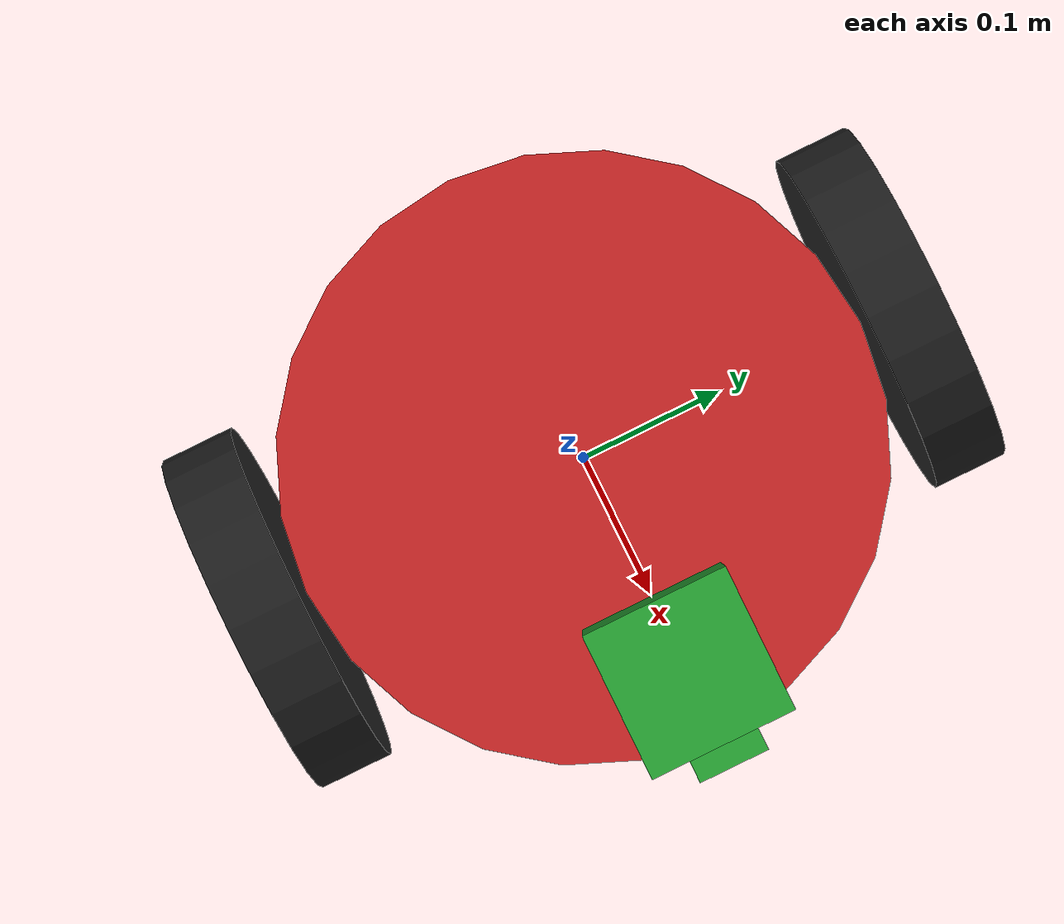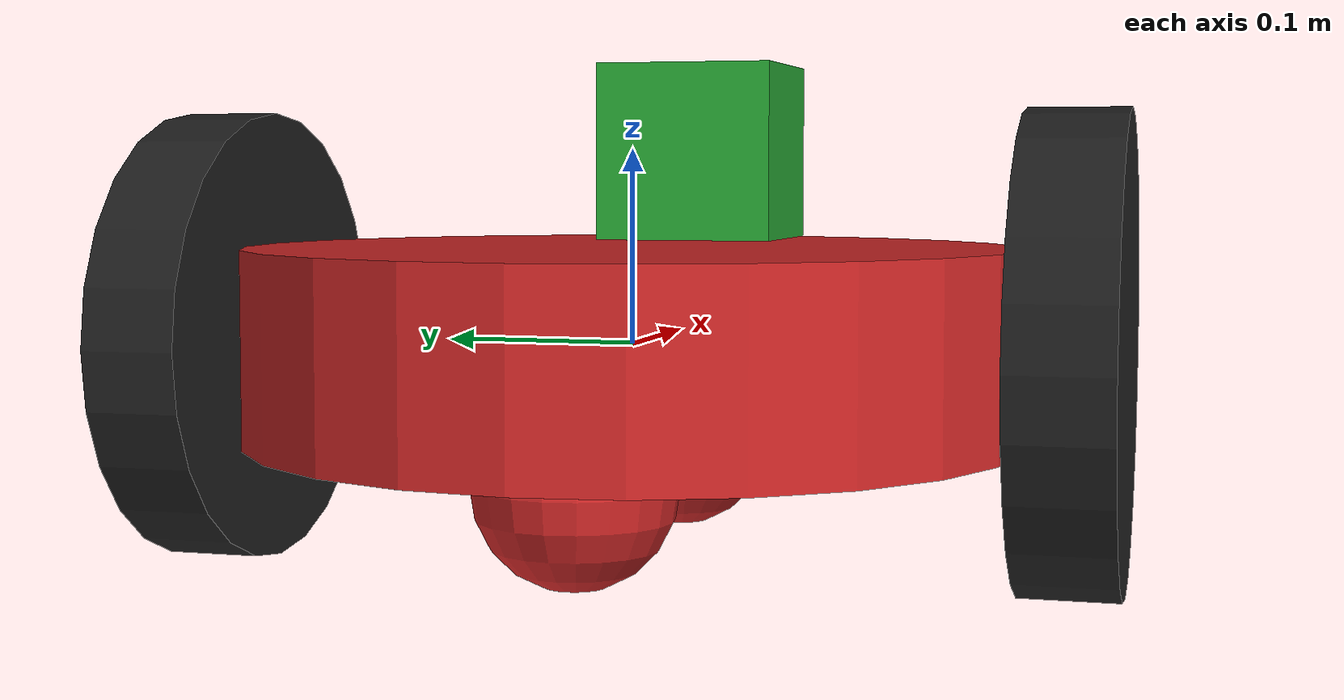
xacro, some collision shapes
<?xml version='1.0'?>

<robot name="my_robot" xmlns:xacro="http://www.ros.org/wiki/xacro">
    <xacro:include filename="$(find my_robot)/urdf/my_robot.gazebo" />
    <link name="robot_footprint"></link>

    <joint name="robot_footprint_joint" type="fixed">
    <origin xyz="0 0 0" rpy="0 0 0" />
    <parent link="robot_footprint"/>
    <child link="chassis" />
    </joint>

    <link name='chassis'>
    <inertial>
        <mass value="15.0"/>
        <origin xyz="0.0 0 0" rpy=" 0 0 0"/>
        <inertia
            ixx="0.1" ixy="0" ixz="0"
            iyy="0.1" iyz="0"
            izz="0.1"
        />
    </inertial>
    <collision name='collision'>
        <origin xyz="0 0 0" rpy=" 0 0 0"/>
        <geometry>
        <cylinder length="0.10" radius="0.20"/>
        </geometry>
    </collision>
    <visual name='chassis_visual'>
        <origin xyz="0 0 0" rpy=" 0 0 0"/>
        <geometry>
        <cylinder length="0.10" radius="0.20"/>
        </geometry>
    </visual>
    <collision name='back_caster_collision'>
        <origin xyz="-0.1 0 -0.06" rpy=" 0 0 0"/>
        <geometry>
        <sphere radius="0.0499"/>
        </geometry>
    </collision>
    <visual name='back_caster_visual'>
        <origin xyz="-0.1 0 -0.06" rpy=" 0 0 0"/>
        <geometry>
        <sphere radius="0.05"/>
        </geometry>
    </visual>
    <collision name='front_caster_collision'>
        <origin xyz="0.1 0 -0.06" rpy=" 0 0 0"/>
        <geometry>
        <sphere radius="0.0499"/>
        </geometry>
    </collision>
    <visual name='front_caster_visual'>
        <origin xyz="0.1 0 -0.06" rpy=" 0 0 0"/>
        <geometry>
        <sphere radius="0.05"/>
        </geometry>
    </visual>
    </link>

    <link name='left_wheel'>
        <inertial>
            <mass value="5.0"/>
            <origin xyz="0 0 0" rpy=" 0 0 0"/>
            <inertia
                ixx="0.01" ixy="0" ixz="0"
                iyy="0.01" iyz="0"
                izz="0.01"
            />
        </inertial>
        <collision name='left_wheel_collision'>
            <origin xyz="0 0 0" rpy=" 0 1.5707 1.5707"/>
            <geometry>
            <cylinder radius="0.12" length="0.05"/>
            </geometry>
        </collision>
        <visual name='left_wheel_visual'>
            <origin xyz="0 0 0" rpy=" 0 1.5707 1.5707"/>
            <geometry>
            <cylinder radius="0.12" length="0.05"/>
            </geometry>
        </visual>
    </link>
    <link name='right_wheel'>
        <inertial>
            <mass value="5.0"/>
            <origin xyz="0 0 0" rpy=" 0 0 0"/>
            <inertia
                ixx="0.01" ixy="0" ixz="0"
                iyy="0.01" iyz="0"
                izz="0.01"
            />
        </inertial>
        <collision name='right_wheel_collision'>
            <origin xyz="0 0 0" rpy=" 0 1.5707 1.5707"/>
            <geometry>
            <cylinder radius="0.12" length="0.05"/>
            </geometry>
        </collision>
        <visual name='right_wheel_visual'>
            <origin xyz="0 0 0" rpy=" 0 1.5707 1.5707"/>
            <geometry>
            <cylinder radius="0.12" length="0.05"/>
            </geometry>
        </visual>
    </link>

    <joint type="continuous" name="left_wheel_hinge">
        <origin xyz="0 0.225 0" rpy="0 0 0"/>
        <child link="left_wheel"/>
        <parent link="chassis"/>
        <axis xyz="0 1 0"/>
        <limit effort="10000" velocity="1000"/>
        <dynamics damping="1.0" friction="1.0"/>
    </joint>
    <joint type="continuous" name="right_wheel_hinge">
        <origin xyz="0 -0.225 0" rpy="0 0 0"/>
        <child link="right_wheel"/>
        <parent link="chassis"/>
        <axis xyz="0 1 0"/>
        <limit effort="10000" velocity="1000"/>
        <dynamics damping="1.0" friction="1.0"/>
    </joint>

    <link name="camera">
        <inertial>
            <mass value="0.1"/>
            <origin xyz="0 0 0" rpy="0 0 0"/>
            <inertia
                ixx="1e-6" ixy="0" ixz="0"
                iyy="1e-6" iyz="0"
                izz="1e-6"
            />
        </inertial>
        <collision name="camera_collision">
            <origin xyz="0 0 0" rpy="0 0 0"/>
            <geometry>
                <box size="0.05 0.05 0.05"/>
            </geometry>
        </collision>
        <visual name="camera_visual">
            <origin xyz="0 0 0" rpy="0 0 0"/>
            <geometry>
                <box size="0.05 0.05 0.05"/>
            </geometry>
        </visual>
    </link>

    <joint type="fixed" name="camera_joint">
        <origin xyz="0.20 0 0.0" rpy="0 0 0"/>
        <child link="camera"/>
        <parent link="chassis"/>
    </joint>

    <joint name="camera_optical_joint" type="fixed">
        <origin xyz="0 0 0" rpy="-1.5707 0 -1.5707"/>
        <parent link="camera"/>
        <child link="camera_link_optical"/>
    </joint>

    <link name="camera_link_optical">
    </link>

    <link name="hokuyo">
        <inertial>
            <mass value="1e-5"/>
            <origin xyz="0 0 0" rpy="0 0 0"/>
            <inertia
                ixx="1e-6" ixy="0" ixz="0"
                iyy="1e-6" iyz="0"
                izz="1e-6"
            />
        </inertial>
        <visual name="hokuyo_visual">
            <origin xyz="0 0 0" rpy="0 0 0"/>
            <geometry>
                <mesh filename="package://my_robot/meshes/hokuyo.dae"/>
            </geometry>
        </visual>
        <collision name="hokuyo_collision">
            <origin xyz="0 0 0" rpy="0 0 0"/>
            <geometry>
                <box size="0.1 0.1 0.1"/>
            </geometry>
        </collision>
    </link>
    <joint name="hokuyo_joint" type="fixed">
        <origin xyz="0.15 0 0.10" rpy="0 0 0"/>
        <parent link="chassis"/>
        <child link="hokuyo"/>
    </joint>

    <gazebo reference="left_wheel">
        <material>Gazebo/Black</material>
    </gazebo>
    <gazebo reference="right_wheel">
        <material>Gazebo/Black</material>
    </gazebo>
    <gazebo reference="chassis">
        <material>Gazebo/Red</material>
    </gazebo>
    <gazebo reference="camera">
        <material>Gazebo/Green</material>
    </gazebo>
    <gazebo reference="hokuyo">
        <material>Gazebo/Green</material>
    </gazebo>
</robot>
